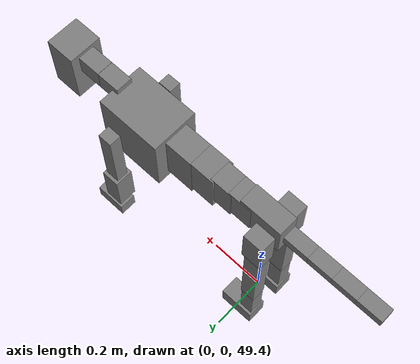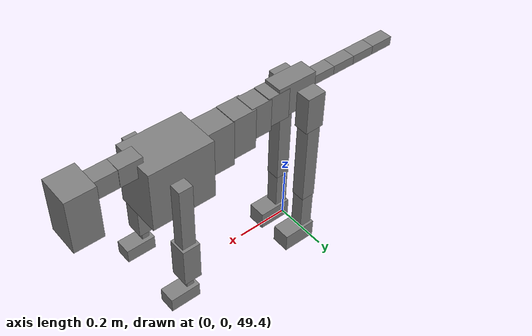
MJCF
<mujoco model="dog">

    <default>
        <joint armature="0.02" stiffness="1" damping="0.2" limited="true"/>
        <geom condim="3" friction="1 0.05 0.05" margin="0.01"/>
        <motor ctrllimited="true" ctrlrange="-1.0 1.0" forcelimited="true" gear="50"/>
    </default>

    <compiler inertiafromgeom="true" angle="radian"/>

    <option timestep="0.016" iterations="50" tolerance="1e-10" solver="Newton" jacobian="dense" cone="pyramidal"/>

    <size nconmax="20000" njmax="60000" nstack="5000000"/>
    <visual>
        <map force="0.1" zfar="30"/>
        <rgba haze="0.15 0.25 0.35 1"/>
        <quality shadowsize="2048"/>
        <global offwidth="800" offheight="800"/>
    </visual>

    <asset>
        <texture type="skybox" builtin="gradient" rgb1="0.3 0.5 0.7" rgb2="0 0 0" width="512" height="512"/>
        <texture name="texplane" type="2d" builtin="checker" rgb1=".2 .3 .4" rgb2=".1 0.15 0.2" width="512" height="512"
                 mark="cross" markrgb=".8 .8 .8"/>
        <texture name="texgeom" type="cube" builtin="flat" mark="cross" width="127" height="1278" rgb1="0.8 0.6 0.4"
                 rgb2="0.8 0.6 0.4" markrgb="1 1 1" random="0.01"/>

        <material name="matplane" reflectance="0.3" texture="texplane" texrepeat="1 1" texuniform="true"/>
        <material name="matgeom" texture="texgeom" texuniform="true" rgba="0.8 0.6 .4 1"/>
    </asset>

    <worldbody>
        <geom name="floor" pos="0 0 0" size="0 0 .25" type="plane" material="matplane" condim="3"/>

        <light directional="false" diffuse=".2 .2 .2" specular="0 0 0" pos="0 0 5" dir="0 0 -1" castshadow="false"/>
        <light mode="targetbodycom" target="torso" directional="false" diffuse=".8 .8 .8" specular="0.3 0.3 0.3"
               pos="0 0 4.0" dir="0 0 -1"/>

        <body name="root" pos="0 0 50">
            <freejoint name="root_1"/>
            <geom type="box" pos="0 0 -0.02" size="0.0774  0.0358  0.063" density="2030"/>

            <body name="spine1" pos="0.054 0 0">
                <joint name="spine1_y" axis="0 1 0" range="0 0.7" limited="true"/>
                <geom type="box" pos="0.02375 0 -0.03" size="0.04375  0.0375  0.05985" density="2030"/>

                <body name="spine2" pos="0.0612 0 0">
                    <joint name="spine2_y" axis="0 1 0" range="-0.15 0.15" limited="true"/>
                    <geom type="box" pos="0.03555  0  -0.04" size="0.04055  0.039  0.06615" density="2030"/>

                    <body name="spine3" pos="0.0730 0 0">
                        <joint name="spine3_y" axis="0 1 0" range="-0.15 0.15" limited="true"/>
                        <geom type="box" pos="0.03555  0  -0.057" size="0.04555  0.0445  0.081" density="2030"/>

                        <body name="spine4" pos="0.0780 0 0">
                            <joint name="spine4_y" axis="0 1 0" range="-0.15 0.15" limited="true"/>
                            <geom type="box" pos="0.05265  0  -0.07" size="0.05265  0.045  0.09135" density="2030"/>

                            <body name="torso" pos="0.1082 0 0">
                                <joint name="torso_y" axis="0 1 0" range="-0.15 0.15" limited="true"/>
                                <geom type="box" pos="0.11925  0  -0.085" size="0.11925  0.085  0.11745"
                                      density="2030"/>

                                <body name="neck1" pos="0.2160  0   0.0180">
                                    <joint name="neck1_y" axis="0 1 0" range="-1.2  -1" limited="true"/>
                                    <geom type="box" pos="0.0423  0  0" size="0.0423  0.03  0.036" density="2325"/>

                                    <body name="neck2" pos="0.0853  0  0">
                                        <joint name="neck2_y" axis="0 1 0" range="0.1  0" limited="true"/>
                                        <geom type="box" pos="0.0423  0  0" size="0.0423  0.03  0.036" density="2325"/>

                                        <body name="head" pos="0.0853  0  0">
                                            <joint name="head_y" axis="0 1 0" range="-0.3  -0.2" limited="true"/>
                                            <geom type="box" pos="0.0531  0  -0.055" size="0.0531  0.06  0.1044"
                                                  density="4030"/>

                                        </body>
                                    </body>
                                </body>

                                <body name="front_shoulder" pos="0.156  0   -0.0480">
                                    <joint name="front_shoulder_y" axis="0 1 0" range="-1 1.5" limited="true"/>
                                    <geom type="box" pos="0 0.13 -0.1134" size="0.0252  0.0215  0.1401" density="1158"/>
                                    <geom type="box" pos="0 -0.13 -0.1134" size="0.0252  0.0215  0.1401"
                                          density="1158"/>

                                    <body name="front_elbow" pos="0  0  -0.2268">
                                        <joint name="front_elbow_y" axis="0 1 0" range="-2 0" limited="true"/>
                                        <geom type="box" pos="0 0.13 -0.0779" size="0.0326  0.0334  0.0779"
                                              density="1081"/>
                                        <geom type="box" pos="0 -0.13 -0.0779" size="0.0326  0.0334  0.0779"
                                              density="1081"/>

                                        <body name="front_wrist" pos="0  0  -0.1558">
                                            <joint name="front_wrist_y" axis="0 1 0" range="-0.2 0" limited="true"/>
                                            <geom type="box" pos="0 0.13 -0.0298" size="0.0137  0.0152  0.0430"
                                                  density="1664"/>
                                            <geom type="box" pos="0 -0.13 -0.0298" size="0.0137  0.0152  0.0430"
                                                  density="1664"/>

                                            <body name="front_finger_end" pos="0  0  -0.0596">
                                                <joint name="front_finger_y" axis="0 1 0" range="-0.4 1"
                                                       limited="true"/>
                                                <geom type="box" pos="0.0305  0.13  -0.0123"
                                                      size="0.0559  0.0305  0.0273" density="1515"/>
                                                <geom type="box" pos="0.0305  -0.13  -0.0123"
                                                      size="0.0559  0.0305  0.0273" density="1515"/>

                                            </body>

                                        </body>
                                    </body>
                                </body>

                            </body>
                        </body>
                    </body>
                </body>
            </body>

            <body name="back_hip" pos="-0.03 0 -0.018">
                <joint name="back_hip_y" axis="0 1 0" range="-1.5 0.3" limited="true"/>
                <geom type="box" pos="0 0.07 -0.0494" size="0.0364  0.0285  0.0722" density="1154"/>
                <geom type="box" pos="0 -0.07 -0.0494" size="0.0364  0.0285  0.0722" density="1154"/>

                <body name="back_knee" pos="0  0  -0.0988">
                    <joint name="back_knee_y" axis="0 1 0" range="0 2.8" limited="true"/>
                    <geom type="box" pos="0 0.07 -0.1664" size="0.0269  0.0265  0.1819" density="1227"/>
                    <geom type="box" pos="0 -0.07 -0.1664" size="0.0269  0.0265  0.1819" density="1227"/>

                    <body name="back_ankle" pos="0  0  -0.3328">
                        <joint name="back_ankle_y" axis="0 1 0" range="-2.2 0" limited="true"/>
                        <geom type="box" pos="0 0.07 -0.0879" size="0.0249  0.0249  0.0992" density="1284"/>
                        <geom type="box" pos="0 -0.07 -0.0879" size="0.0249  0.0249  0.0992" density="1284"/>

                        <body name="back_toe_end" pos="0  0  -0.1759">
                            <joint name="back_toe_y" axis="0 1 0" range="-0.4 1" limited="true"/>
                            <geom type="box" pos="0.0352  0.07  -0.0208" size="0.0645  0.0352  0.0358" density="1515"/>
                            <geom type="box" pos="0.0352  -0.07  -0.0208" size="0.0645  0.0352  0.0358" density="1515"/>

                        </body>
                    </body>
                </body>
            </body>

            <body name="tail1" pos="-0.074 0 -0.006">
                <joint name="tail1_y" axis="0 1 0" range="-0.2 0.2" limited="true"/>
                <geom type="box" pos="-0.0536  0  0" size="0.045  0.025  0.0175" density="1587"/>

                <body name="tail2" pos="-0.09 0 0">
                    <joint name="tail2_y" axis="0 1 0" range="-0.2 0.2" limited="true"/>
                    <geom type="box" pos="-0.0536  0  0" size="0.045  0.025  0.0175" density="1587"/>

                    <body name="tail3" pos="-0.09 0 0">
                        <joint name="tail3_y" axis="0 1 0" range="-0.2 0.2" limited="true"/>
                        <geom type="box" pos="-0.0536  0  0" size="0.045  0.025  0.0175" density="1587"/>

                        <body name="tail4" pos="-0.09 0 0">
                            <joint name="tail4_y" axis="0 1 0" range="-0.2 0.2" limited="true"/>
                            <geom type="box" pos="-0.0536  0  0" size="0.045  0.025  0.0175" density="1587"/>

                        </body>
                    </body>
                </body>
            </body>
        </body>
    </worldbody>

    <actuator>
        <motor joint="spine1_y" forcerange="-150 150     "/>
        <motor joint="spine2_y" forcerange="-150 150     "/>
        <motor joint="spine3_y" forcerange="-150 150     "/>
        <motor joint="spine4_y" forcerange="-150 150     "/>
        <motor joint="torso_y" forcerange="-150 150     "/>
        <motor joint="neck1_y" forcerange="-100 100       "/>
        <motor joint="neck2_y" forcerange="-100 100       "/>
        <motor joint="head_y" forcerange="-150 150       "/>
        <motor joint="front_shoulder_y" forcerange="-135.34 108.28"/>
        <motor joint="front_elbow_y" forcerange="-149.93 192.64"/>
        <motor joint="front_wrist_y" forcerange="-53.75 67.68"/>
        <motor joint="front_finger_y" forcerange="-29.55 93.11"/>
        <motor joint="back_hip_y" forcerange="-290.38 289.85"/>
        <motor joint="back_knee_y" forcerange="-265.45 319.64"/>
        <motor joint="back_angle_y" forcerange="-247.23 51.94"/>
        <motor joint="back_toe_y" forcerange="-67.16 134.45"/>
        <motor joint="tail1_y" forcerange="-50 50     "/>
        <motor joint="tail2_y" forcerange="-50 50     "/>
        <motor joint="tail3_y" forcerange="-50 50     "/>
        <motor joint="tail4_y" forcerange="-50 50     "/>
    </actuator>
</mujoco>
